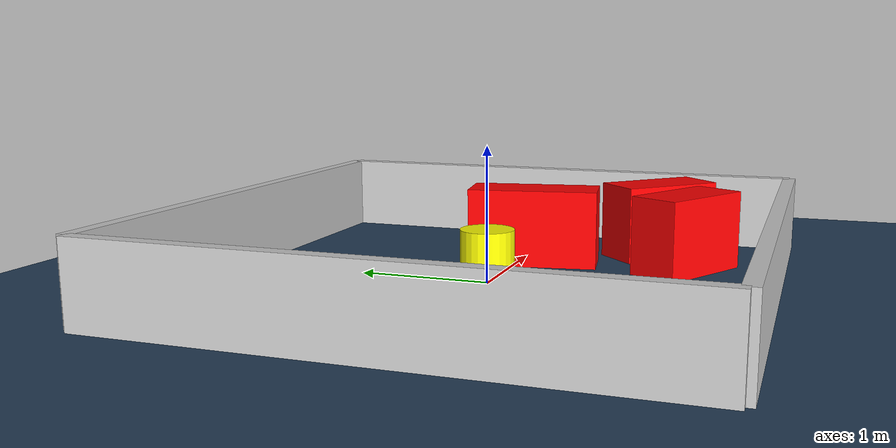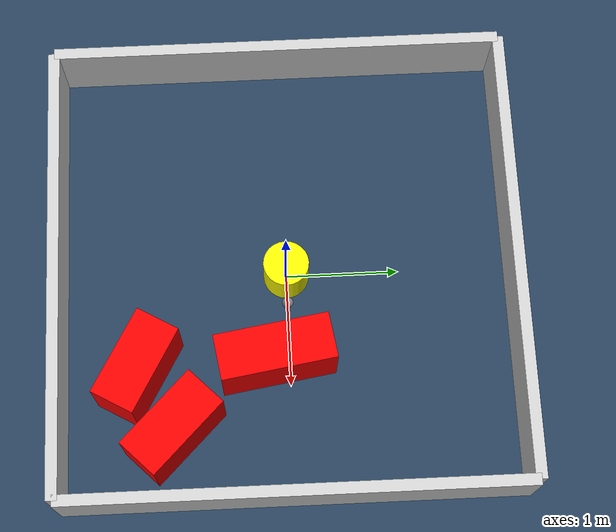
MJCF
<?xml version="1.0" ?>
<mujoco model="generated_environment">
  <option timestep="0.01" integrator="RK4" cone="elliptic"/>
  <default>
    <geom density="1"/>
  </default>
  <asset>
    <texture builtin="gradient" height="3072" rgb1="0.3 0.5 0.7" rgb2="0 0 0" type="skybox" width="512"/>
    <texture builtin="checker" height="300" mark="edge" markrgb="0.8 0.8 0.8" name="groundplane" rgb1="0.2 0.3 0.4" rgb2="0.1 0.2 0.3" type="2d" width="300"/>
    <material name="groundplane" reflectance="0.2" texrepeat="5 5" texture="groundplane" texuniform="true"/>
    <material name="robot" rgba="0.0 1.0 0.0 1"/>
  </asset>
  <worldbody>
    <light dir="0 0 -1" directional="true" pos="0 0 1.5"/>
    <geom condim="4" friction="1.0 0.005 0.001" material="groundplane" name="floor" size="0 0 0.05" type="plane"/>
    <body name="walls">
      <geom name="wall_1" condim="4" pos="-2.0 0.0 0.3" rgba="0.800000011920929 0.800000011920929 0.800000011920929 1.0" size="0.05 2.0 0.3" type="box"/>
      <geom name="wall_2" condim="4" pos="2.0 0.0 0.3" rgba="0.800000011920929 0.800000011920929 0.800000011920929 1.0" size="0.05 2.0 0.3" type="box"/>
      <geom name="wall_3" condim="4" pos="0.0 -2.0 0.3" rgba="0.800000011920929 0.800000011920929 0.800000011920929 1.0" size="2.0 0.05 0.3" type="box"/>
      <geom name="wall_4" condim="4" pos="0.0 2.0 0.3" rgba="0.800000011920929 0.800000011920929 0.800000011920929 1.0" size="2.0 0.05 0.3" type="box"/>
    </body>
    <body name="robot">
      <joint name="joint_x" type="slide" pos="0 0 0" axis="1 0 0"/>
      <joint name="joint_y" type="slide" pos="0 0 0" axis="0 1 0"/>
      <geom name="robot" type="sphere" pos="0.3 0.0 0.2" size="0.05" mass="5." friction="1.0 0.005 0.0001" condim="4" rgba="0.5 0.5 0.5 1.0"/>
      <site name="sensor_ball"/>
    </body>
    <body name="obstacle_movable_1">
      <geom name="obstacle_movable_1" condim="4" pos="0.0 0.0 0.2" euler="0 0 0.0" friction="1.0 0.005 0.001" rgba="1.0 1.0 0.0 1.0" size="0.2 0.2 0.0" type="cylinder" mass="0.1"/>
      <joint type="free"/>
    </body>
    <body name="obstacle_2_static">
      <geom name="obstacle_2_static" condim="4" pos="0.7862327141923824 -0.12563534286802924 0.3" euler="0 0 279.25351456276536" friction="1.0 0.005 0.001" rgba="1 0 0 1" size="0.500760664616833 0.2 0.3" type="box"/>
    </body>
    <body name="obstacle_3_static">
      <geom name="obstacle_3_static" condim="4" pos="1.3928392832611634 -1.0112196548316614 0.3" euler="0 0 135.16808273367852" friction="1.0 0.005 0.001" rgba="1 0 0 1" size="0.4167346313969015 0.2 0.3" type="box"/>
    </body>
    <body name="obstacle_4_static">
      <geom name="obstacle_4_static" condim="4" pos="0.8540128726088283 -1.3091958635572025 0.3" euler="0 0 150.4199576231196" friction="1.0 0.005 0.001" rgba="1 0 0 1" size="0.40472237800600563 0.2 0.3" type="box"/>
    </body>
  </worldbody>
  <actuator>
    <motor name="actuator_x" joint="joint_x" gear="1" ctrlrange="-1 1"/>
    <motor name="actuator_y" joint="joint_y" gear="1" ctrlrange="-1 1"/>
  </actuator>
</mujoco>
